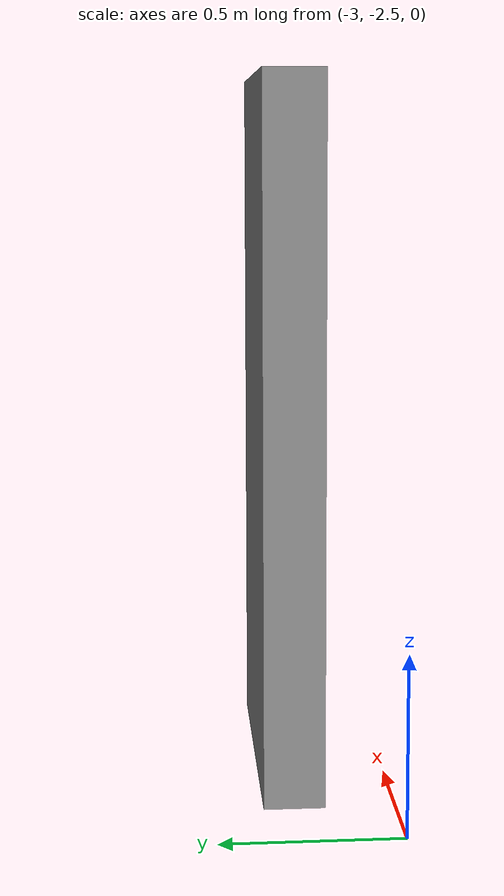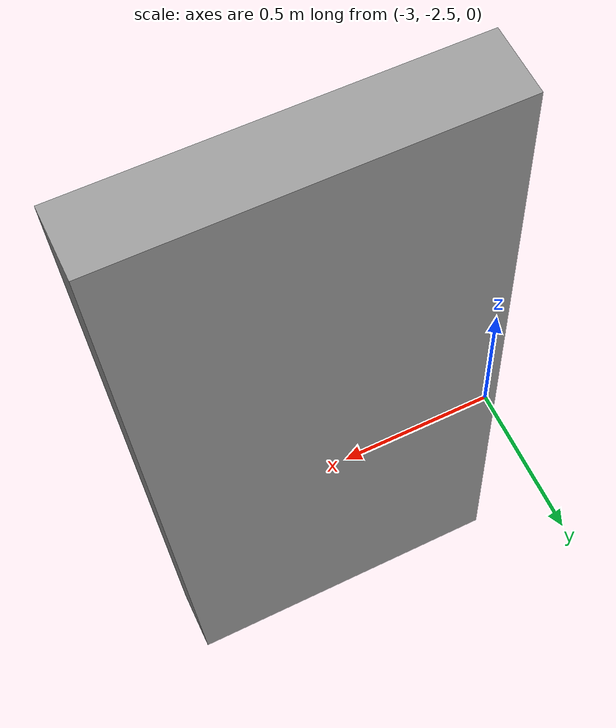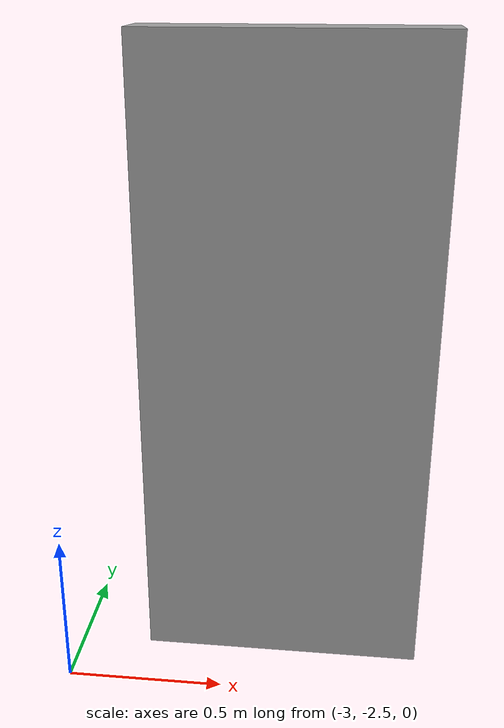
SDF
<?xml version='1.0'?>
<sdf version='1.6'>
  <model name='House'>
    <pose frame=''>0 0 0 0 -0 0</pose>
    <link name='Door_1'>
      <collision name='Door_1_Collision'>
        <geometry>
          <box>
            <size>0.9 0.17 2</size>
          </box>
        </geometry>
        <pose frame=''>0 0 1 0 -0 0</pose>
      </collision>
      <visual name='Door_1_Visual'>
        <pose frame=''>0 0 1 0 -0 0</pose>
        <geometry>
          <box>
            <size>0.9 0.17 2</size>
          </box>
        </geometry>
        <material>
          <script>
            <uri>file://media/materials/scripts/gazebo.material</uri>
            <name>Gazebo/Grey</name>
          </script>
        </material>
      </visual>
      <pose frame=''>-2.32 -2.22 0 0 -0 0</pose>
    </link>
    <static>1</static>
  </model>
</sdf>
